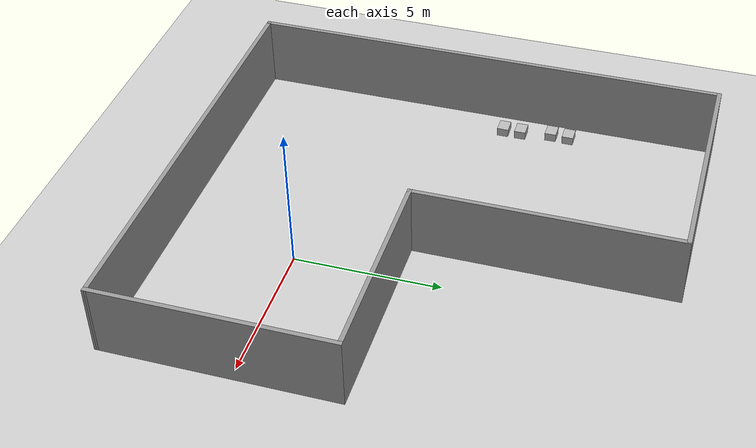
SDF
<sdf version="1.7">
 <world name="default">
  <light name="sun" type="directional">
   <pose>0 0 10 0 -0 0</pose>
   <diffuse>0.8 0.8 0.8 1</diffuse>
   <specular>0.2 0.2 0.2 1</specular>
   <attenuation>
    <range>1000</range>
    <constant>0.9</constant>
    <linear>0.01</linear>
    <quadratic>0.001</quadratic>
   </attenuation>
   <direction>-0.5 0.1 -0.9</direction>
   <spot><inner_angle>0</inner_angle><outer_angle>0</outer_angle><falloff>0</falloff></spot>
  </light>
  <model name="ground_plane">
   <static>1</static>
   <link name="link">
    <collision name="collision">
     <geometry><plane><normal>0 0 1</normal><size>100 100</size></plane></geometry>
     <surface><friction><ode><mu>100</mu><mu2>50</mu2></ode></friction></surface>
    </collision>
    <visual name="visual">
     <cast_shadows>0</cast_shadows>
     <geometry><plane><normal>0 0 1</normal><size>100 100</size></plane></geometry>
     <material>
      <script><uri>file://media/materials/scripts/gazebo.material</uri><name>Gazebo/Grey</name></script>
     </material>
    </visual>
   </link>
  </model>
  <model name="warehouse_building">
   <pose>-2 4.00005 0 0 -0 0</pose>
   <link name="Wall_0">
    <collision name="Wall_0_Collision">
     <geometry><box><size>8 0.15 2.5</size></box></geometry>
     <pose>0 0 1.25 0 -0 0</pose>
    </collision>
    <visual name="Wall_0_Visual">
     <pose>0 0 1.25 0 -0 0</pose>
     <geometry><box><size>8 0.15 2.5</size></box></geometry>
     <material>
      <script><uri>file://media/materials/scripts/gazebo.material</uri><name>Gazebo/Grey</name></script>
      <ambient>1 1 1 1</ambient>
     </material>
     <meta><layer>0</layer></meta>
    </visual>
    <pose>-3.425 8.35025 0 0 -0 0</pose>
   </link>
   <link name="Wall_1">
    <collision name="Wall_1_Collision">
     <geometry><box><size>9 0.15 2.5</size></box></geometry>
     <pose>0 0 1.25 0 -0 0</pose>
    </collision>
    <visual name="Wall_1_Visual">
     <pose>0 0 1.25 0 -0 0</pose>
     <geometry><box><size>9 0.15 2.5</size></box></geometry>
     <material>
      <script><uri>file://media/materials/scripts/gazebo.material</uri><name>Gazebo/Grey</name></script>
      <ambient>1 1 1 1</ambient>
     </material>
     <meta><layer>0</layer></meta>
    </visual>
    <pose>0.5 3.92525 0 0 -0 -1.5708</pose>
   </link>
   <link name="Wall_2">
    <collision name="Wall_2_Collision">
     <geometry><box><size>7 0.15 2.5</size></box></geometry>
     <pose>0 0 1.25 0 -0 0</pose>
    </collision>
    <visual name="Wall_2_Visual">
     <pose>0 0 1.25 0 -0 0</pose>
     <geometry><box><size>7 0.15 2.5</size></box></geometry>
     <material>
      <script><uri>file://media/materials/scripts/gazebo.material</uri><name>Gazebo/Grey</name></script>
      <ambient>1 1 1 1</ambient>
     </material>
     <meta><layer>0</layer></meta>
    </visual>
    <pose>3.925 -0.499746 0 0 -0 0</pose>
   </link>
   <link name="Wall_3">
    <collision name="Wall_3_Collision">
     <geometry><box><size>8 0.15 2.5</size></box></geometry>
     <pose>0 0 1.25 0 -0 0</pose>
    </collision>
    <visual name="Wall_3_Visual">
     <pose>0 0 1.25 0 -0 0</pose>
     <geometry><box><size>8 0.15 2.5</size></box></geometry>
     <material>
      <script><uri>file://media/materials/scripts/gazebo.material</uri><name>Gazebo/Grey</name></script>
      <ambient>1 1 1 1</ambient>
     </material>
     <meta><layer>0</layer></meta>
    </visual>
    <pose>7.35 -4.42475 0 0 -0 -1.5708</pose>
   </link>
   <link name="Wall_7">
    <collision name="Wall_7_Collision">
     <geometry><box><size>16.75 0.15 2.5</size></box></geometry>
     <pose>0 0 1.25 0 -0 0</pose>
    </collision>
    <visual name="Wall_7_Visual">
     <pose>0 0 1.25 0 -0 0</pose>
     <geometry><box><size>16.75 0.15 2.5</size></box></geometry>
     <material>
      <script><uri>file://media/materials/scripts/gazebo.material</uri><name>Gazebo/Grey</name></script>
      <ambient>1 1 1 1</ambient>
     </material>
     <meta><layer>0</layer></meta>
    </visual>
    <pose>-7.35 0.050254 0 0 -0 -1.5708</pose>
   </link>
   <link name="Wall_9">
    <collision name="Wall_9_Collision">
     <geometry><box><size>14.8503 0.15 2.5</size></box></geometry>
     <pose>0 0 1.25 0 -0 0</pose>
    </collision>
    <visual name="Wall_9_Visual">
     <pose>0 0 1.25 0 -0 0</pose>
     <geometry><box><size>14.8503 0.15 2.5</size></box></geometry>
     <material>
      <script><uri>file://media/materials/scripts/gazebo.material</uri><name>Gazebo/Grey</name></script>
      <ambient>1 1 1 1</ambient>
     </material>
     <meta><layer>0</layer></meta>
    </visual>
    <pose>0 -8.29975 0 0 -0 -0.006803</pose>
   </link>
   <static>1</static>
  </model>
  <gravity>0 0 -9.8</gravity>
  <magnetic_field>6e-06 2.3e-05 -4.2e-05</magnetic_field>
  <atmosphere type="adiabatic"/>
  <physics type="ode">
   <max_step_size>0.001</max_step_size>
   <real_time_factor>1</real_time_factor>
   <real_time_update_rate>1000</real_time_update_rate>
  </physics>
  <scene><ambient>0.4 0.4 0.4 1</ambient><background>0.7 0.7 0.7 1</background><shadows>1</shadows></scene>
  <audio><device>default</device></audio>
  <spherical_coordinates>
   <surface_model>EARTH_WGS84</surface_model>
   <latitude_deg>0</latitude_deg>
   <longitude_deg>0</longitude_deg>
   <elevation>0</elevation>
   <heading_deg>0</heading_deg>
  </spherical_coordinates>
  <model name="cardboard_box_2">
   <pose>-8.44551 5.00979 0.149 0 -0 0</pose>
   <link name="link">
    <inertial>
     <mass>2</mass>
     <inertia>
      <ixx>0.0416667</ixx>
      <ixy>0</ixy>
      <ixz>0</ixz>
      <iyy>0.0566667</iyy>
      <iyz>0</iyz>
      <izz>0.0683333</izz>
     </inertia>
    </inertial>
    <collision name="collision">
     <geometry><box><size>0.5 0.4 0.3</size></box></geometry>
     <surface>
      <friction><ode><mu>1</mu><mu2>1</mu2></ode></friction>
      <contact><ode><kp>1e+07</kp><kd>1</kd><min_depth>0.001</min_depth><max_vel>0.1</max_vel></ode></contact>
     </surface>
    </collision>
    <visual name="visual">
     <pose>0 0 -0.15 0 -0 0</pose>
     <geometry>
      <mesh><uri>model://cardboard_box/meshes/cardboard_box.dae</uri><scale>1.25932 1.00745 0.755591</scale></mesh>
     </geometry>
    </visual>
   </link>
  </model>
  <model name="cardboard_box_3">
   <pose>-8.60293 7.3573 0.149 0 -0 0</pose>
   <link name="link">
    <inertial>
     <mass>2</mass>
     <inertia>
      <ixx>0.0416667</ixx>
      <ixy>0</ixy>
      <ixz>0</ixz>
      <iyy>0.0566667</iyy>
      <iyz>0</iyz>
      <izz>0.0683333</izz>
     </inertia>
    </inertial>
    <collision name="collision">
     <geometry><box><size>0.5 0.4 0.3</size></box></geometry>
     <surface>
      <friction><ode><mu>1</mu><mu2>1</mu2></ode></friction>
      <contact><ode><kp>1e+07</kp><kd>1</kd><min_depth>0.001</min_depth><max_vel>0.1</max_vel></ode></contact>
     </surface>
    </collision>
    <visual name="visual">
     <pose>0 0 -0.15 0 -0 0</pose>
     <geometry>
      <mesh><uri>model://cardboard_box/meshes/cardboard_box.dae</uri><scale>1.25932 1.00745 0.755591</scale></mesh>
     </geometry>
    </visual>
   </link>
  </model>
  <model name="cardboard_box_4">
   <pose>-8.62785 6.72727 0.149 0 -0 0</pose>
   <link name="link">
    <inertial>
     <mass>2</mass>
     <inertia>
      <ixx>0.0416667</ixx>
      <ixy>0</ixy>
      <ixz>0</ixz>
      <iyy>0.0566667</iyy>
      <iyz>0</iyz>
      <izz>0.0683333</izz>
     </inertia>
    </inertial>
    <collision name="collision">
     <geometry><box><size>0.5 0.4 0.3</size></box></geometry>
     <surface>
      <friction><ode><mu>1</mu><mu2>1</mu2></ode></friction>
      <contact><ode><kp>1e+07</kp><kd>1</kd><min_depth>0.001</min_depth><max_vel>0.1</max_vel></ode></contact>
     </surface>
    </collision>
    <visual name="visual">
     <pose>0 0 -0.15 0 -0 0</pose>
     <geometry>
      <mesh><uri>model://cardboard_box/meshes/cardboard_box.dae</uri><scale>1.25932 1.00745 0.755591</scale></mesh>
     </geometry>
    </visual>
   </link>
  </model>
  <model name="cardboard_box_5">
   <pose>-8.44951 5.63969 0.149 0 -0 0</pose>
   <link name="link">
    <inertial>
     <mass>2</mass>
     <inertia>
      <ixx>0.0416667</ixx>
      <ixy>0</ixy>
      <ixz>0</ixz>
      <iyy>0.0566667</iyy>
      <iyz>0</iyz>
      <izz>0.0683333</izz>
     </inertia>
    </inertial>
    <collision name="collision">
     <geometry><box><size>0.5 0.4 0.3</size></box></geometry>
     <surface>
      <friction><ode><mu>1</mu><mu2>1</mu2></ode></friction>
      <contact><ode><kp>1e+07</kp><kd>1</kd><min_depth>0.001</min_depth><max_vel>0.1</max_vel></ode></contact>
     </surface>
    </collision>
    <visual name="visual">
     <pose>0 0 -0.15 0 -0 0</pose>
     <geometry>
      <mesh><uri>model://cardboard_box/meshes/cardboard_box.dae</uri><scale>1.25932 1.00745 0.755591</scale></mesh>
     </geometry>
    </visual>
   </link>
  </model>
 </world>
</sdf>
